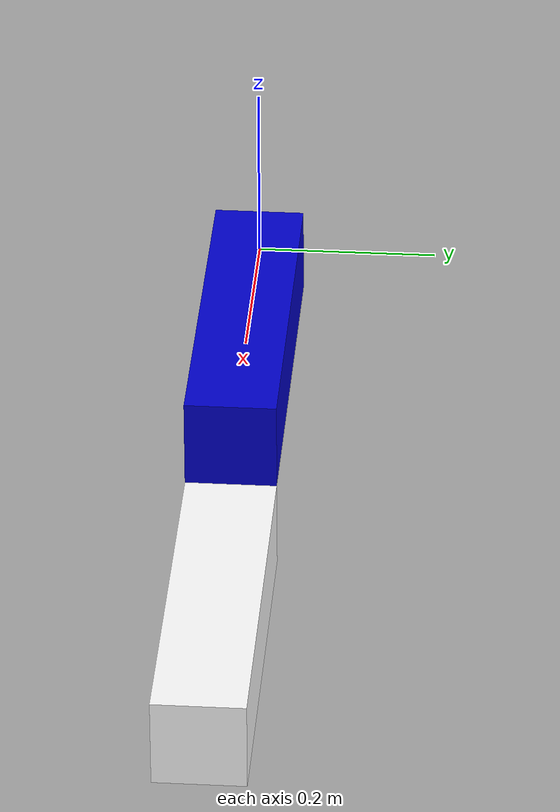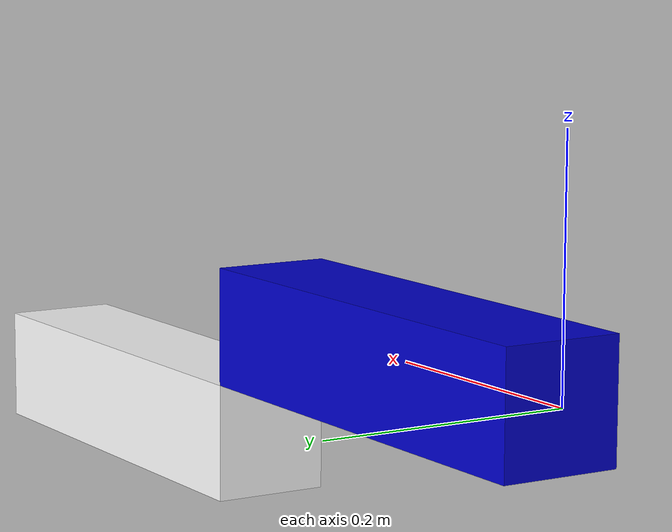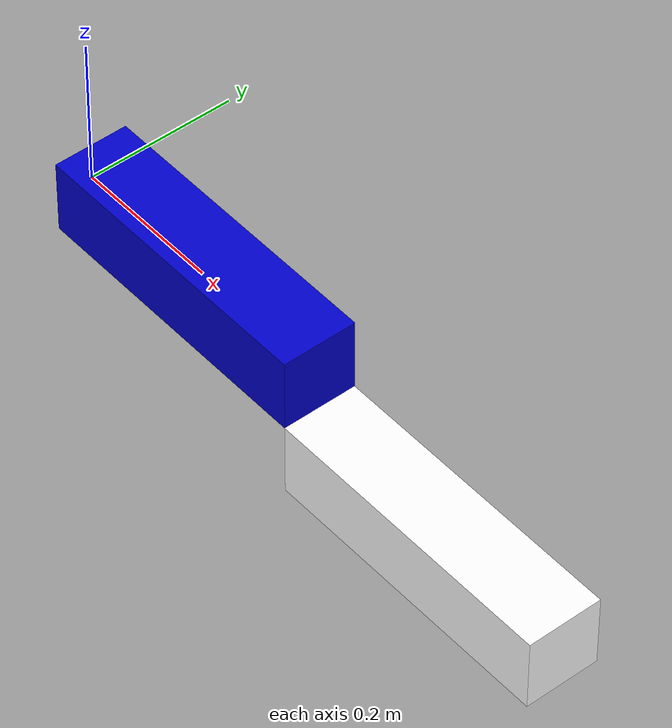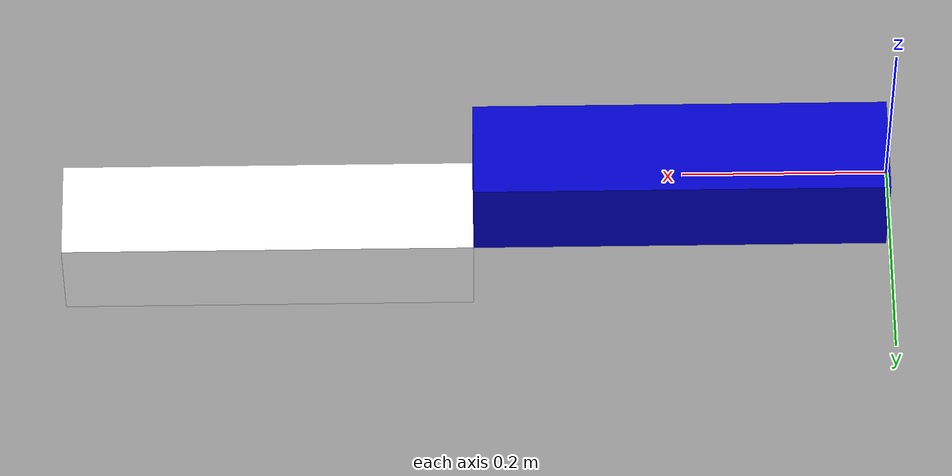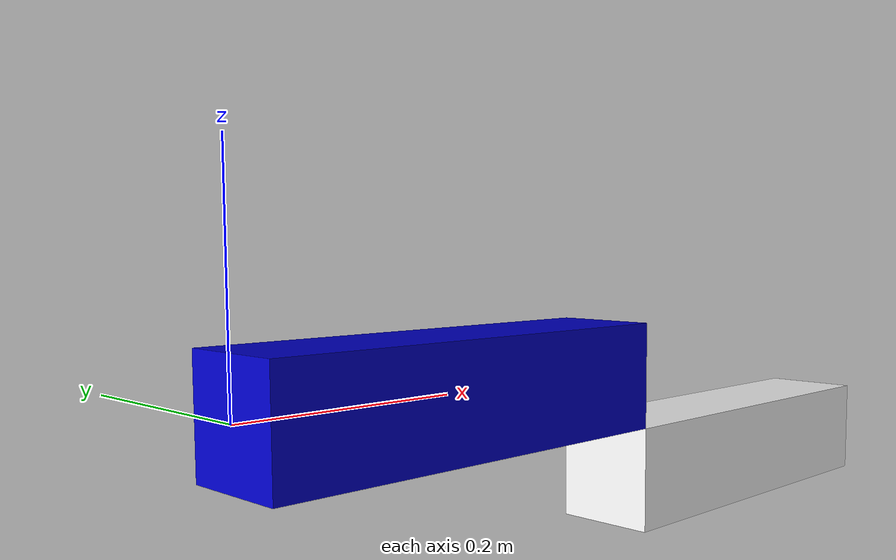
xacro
<?xml version="1.0"?>
<robot xmlns:xacro="http://www.ros.org/wiki/xacro" name="rasm">

  <xacro:property name="A1Len" value="0.406"/>
  <xacro:property name="A1Width" value="0.1"/>
  <xacro:property name="A1Height" value="0.1"/>
  <xacro:property name="A2Len" value="0.406"/>
  <xacro:property name="A2Width" value="0.1"/>
  <xacro:property name="A2Height" value="0.1"/>
  <xacro:property name="A1A2LimitLower" value="-0.548"/>
  <xacro:property name="A1A2LimitUpper" value="0.548"/>
  <xacro:property name="base_linkA1LimitLower" value="-0.548"/>
  <xacro:property name="base_linkA1LimitUpper" value="0.548"/>

  <material name="blue">
    <color rgba="0 0 0.8 1"/>
  </material>

  <material name="white">
    <color rgba="1 1 1 1"/>
  </material>

  <link name="base_link" />

  <link name="A1">
    <visual>
      <geometry>
        <box size="${A1Len} ${A1Width} ${A1Height}"/>
      </geometry>
      <origin xyz="${A1Len/2.0} 0 0"/>
      <material name="blue"/>
    </visual>
    <collision>
      <geometry>
        <box size="${A1Len} ${A1Width} ${A1Height}"/>
      </geometry>
    </collision>
  </link>

  <link name="A2">
    <visual>
      <geometry>
        <box size="${A2Len} ${A2Width} ${A2Height}"/>
      </geometry>
      <origin xyz="${A2Len/2} 0 ${-A2Height/2}"/>
      <material name="white"/>
    </visual>
    <collision>
      <geometry>
        <box size="${A2Len} ${A2Width} ${A2Height}"/>
      </geometry>
    </collision>
  </link>

  <joint name="A1_to_A2" type="revolute">
    <axis xyz="0 0 1"/>
    <limit effort="1000.0" lower="${A1A2LimitLower}" upper="${A1A2LimitUpper}" velocity="0.5"/>
    <parent link="A1"/>
    <child link="A2"/>
    <origin xyz="${A1Len} 0 ${-A1Height/2}"/>
  </joint>

  <joint name="base_link_to_A1" type="revolute">
    <axis xyz="0 0 1"/>
    <limit effort="1000.0" lower="${base_linkA1LimitLower}" upper="${base_linkA1LimitUpper}" velocity="0.5"/>
    <parent link="base_link"/>
    <child link="A1"/>
    <origin xyz="0 0 0"/>
  </joint>

</robot>
